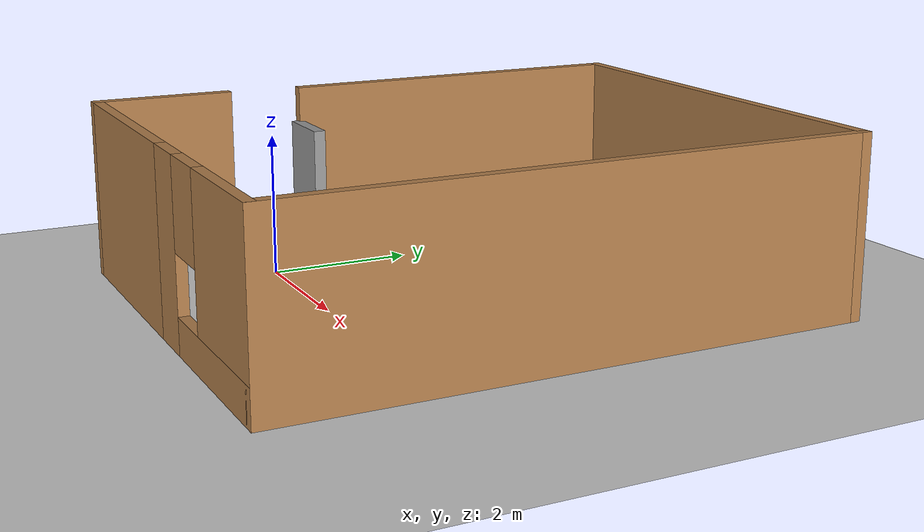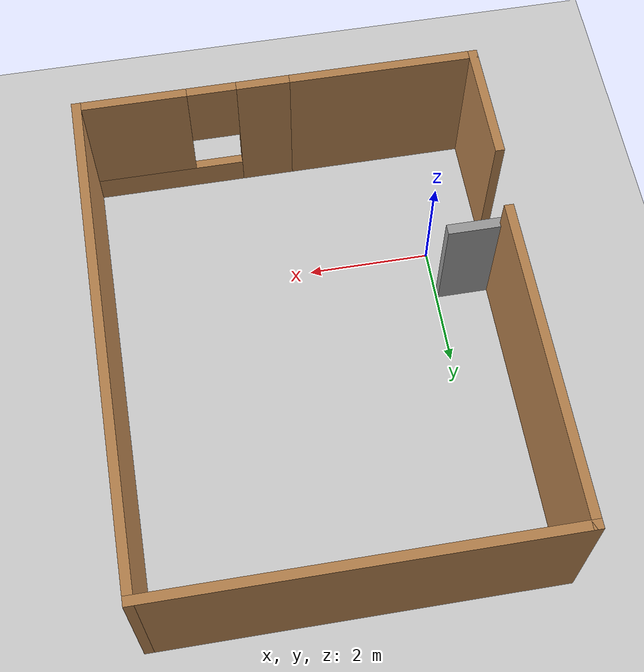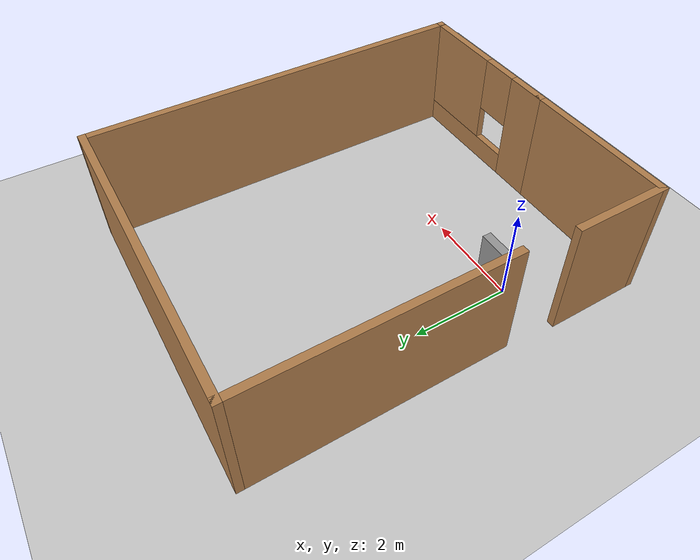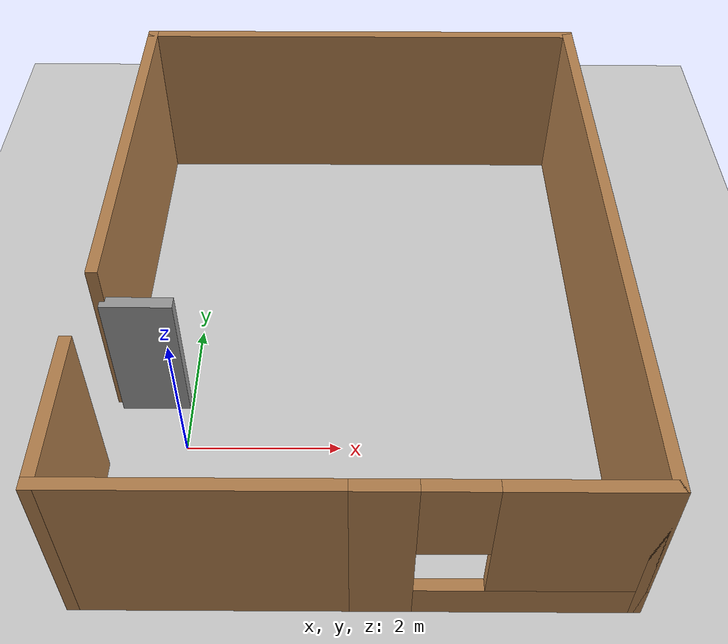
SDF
<sdf version="1.7">
 <world name="default">
  <light name="sun" type="directional">
   <pose>0 0 10 0 -0 0</pose>
   <diffuse>0.8 0.8 0.8 1</diffuse>
   <specular>0.2 0.2 0.2 1</specular>
   <attenuation>
    <range>1000</range>
    <constant>0.9</constant>
    <linear>0.01</linear>
    <quadratic>0.001</quadratic>
   </attenuation>
   <direction>-0.5 0.1 -0.9</direction>
   <spot><inner_angle>0</inner_angle><outer_angle>0</outer_angle><falloff>0</falloff></spot>
  </light>
  <model name="ground_plane">
   <static>1</static>
   <link name="link">
    <collision name="collision">
     <geometry><plane><normal>0 0 1</normal><size>100 100</size></plane></geometry>
     <surface>
      <contact><collide_bitmask>65535</collide_bitmask></contact>
      <friction><ode><mu>100</mu><mu2>50</mu2></ode></friction>
     </surface>
    </collision>
    <visual name="visual">
     <cast_shadows>0</cast_shadows>
     <geometry><plane><normal>0 0 1</normal><size>100 100</size></plane></geometry>
     <material>
      <script><uri>file://media/materials/scripts/gazebo.material</uri><name>Gazebo/Grey</name></script>
     </material>
    </visual>
   </link>
  </model>
  <gravity>0 0 -9.8</gravity>
  <magnetic_field>6e-06 2.3e-05 -4.2e-05</magnetic_field>
  <atmosphere type="adiabatic"/>
  <physics type="ode">
   <max_step_size>0.001</max_step_size>
   <real_time_factor>1</real_time_factor>
   <real_time_update_rate>1000</real_time_update_rate>
  </physics>
  <scene><ambient>0.4 0.4 0.4 1</ambient><background>0.7 0.7 0.7 1</background><shadows>1</shadows></scene>
  <spherical_coordinates>
   <surface_model>EARTH_WGS84</surface_model>
   <latitude_deg>0</latitude_deg>
   <longitude_deg>0</longitude_deg>
   <elevation>0</elevation>
   <heading_deg>0</heading_deg>
  </spherical_coordinates>
  <model name="Hospital_room">
   <pose>2.17999 1.86895 0 0 -0 0</pose>
   <link name="Door_0">
    <collision name="Door_0_Collision">
     <geometry><box><size>0.9 0.17 2</size></box></geometry>
     <pose>0 0 1 0 -0 0</pose>
    </collision>
    <visual name="Door_0_Visual">
     <pose>0 0 1 0 -0 0</pose>
     <geometry><box><size>0.9 0.17 2</size></box></geometry>
     <material>
      <script><uri>file://media/materials/scripts/gazebo.material</uri><name>Gazebo/Grey</name></script>
     </material>
    </visual>
    <pose>-2.66668 -1.13911 0 0 -0 0</pose>
   </link>
   <link name="Wall_10">
    <collision name="Wall_10_Collision">
     <geometry><box><size>6.5 0.15 2.5</size></box></geometry>
     <pose>0 0 1.25 0 -0 0</pose>
    </collision>
    <visual name="Wall_10_Visual">
     <pose>0 0 1.25 0 -0 0</pose>
     <geometry><box><size>6.5 0.15 2.5</size></box></geometry>
     <material>
      <script><uri>file://media/materials/scripts/gazebo.material</uri><name>Gazebo/Wood</name></script>
      <ambient>1 1 1 1</ambient>
     </material>
     <meta><layer>0</layer></meta>
    </visual>
    <pose>0.05 4.05 0 0 -0 3.14159</pose>
   </link>
   <link name="Wall_11">
    <collision name="Wall_11_Collision">
     <geometry><box><size>5.25 0.15 2.5</size></box></geometry>
     <pose>0 0 1.25 0 -0 0</pose>
    </collision>
    <visual name="Wall_11_Visual">
     <pose>0 0 1.25 0 -0 0</pose>
     <geometry><box><size>5.25 0.15 2.5</size></box></geometry>
     <material>
      <script><uri>file://media/materials/scripts/gazebo.material</uri><name>Gazebo/Wood</name></script>
      <ambient>1 1 1 1</ambient>
     </material>
     <meta><layer>0</layer></meta>
    </visual>
    <pose>-3.125 1.5 0 0 -0 -1.5708</pose>
   </link>
   <link name="Wall_13">
    <collision name="Wall_13_Collision">
     <geometry><box><size>2 0.15 2.5</size></box></geometry>
     <pose>0 0 1.25 0 -0 0</pose>
    </collision>
    <visual name="Wall_13_Visual">
     <pose>0 0 1.25 0 -0 0</pose>
     <geometry><box><size>2 0.15 2.5</size></box></geometry>
     <material>
      <script><uri>file://media/materials/scripts/gazebo.material</uri><name>Gazebo/Wood</name></script>
      <ambient>1 1 1 1</ambient>
     </material>
     <meta><layer>0</layer></meta>
    </visual>
    <pose>-3.225 -3.125 0 0 -0 1.5708</pose>
   </link>
   <link name="Wall_6">
    <collision name="Wall_6_Collision">
     <geometry><box><size>3.25 0.15 2.5</size></box></geometry>
     <pose>0 0 1.25 0 -0 0</pose>
    </collision>
    <visual name="Wall_6_Visual">
     <pose>0 0 1.25 0 -0 0</pose>
     <geometry><box><size>3.25 0.15 2.5</size></box></geometry>
     <material>
      <script><uri>file://media/materials/scripts/gazebo.material</uri><name>Gazebo/Wood</name></script>
      <ambient>1 1 1 1</ambient>
     </material>
     <meta><layer>0</layer></meta>
    </visual>
    <pose>-1.675 -4.05 0 0 -0 3.14159</pose>
   </link>
   <link name="Wall_8">
    <pose>1.55 -4.05 0 0 -0 0</pose>
    <visual name="Wall_8_Visual_0">
     <pose>-1.31734 0 1.25 0 -0 0</pose>
     <geometry><box><size>0.865327 0.15 2.5</size></box></geometry>
     <material>
      <script><uri>file://media/materials/scripts/gazebo.material</uri><name>Gazebo/Wood</name></script>
      <ambient>1 1 1 1</ambient>
     </material>
     <meta><layer>0</layer></meta>
    </visual>
    <collision name="Wall_8_Collision_0">
     <geometry><box><size>0.865327 0.15 2.5</size></box></geometry>
     <pose>-1.31734 0 1.25 0 -0 0</pose>
    </collision>
    <visual name="Wall_8_Visual_1">
     <pose>0.432664 0 0.25 0 -0 0</pose>
     <geometry><box><size>2.63467 0.15 0.5</size></box></geometry>
     <material>
      <script><uri>file://media/materials/scripts/gazebo.material</uri><name>Gazebo/Wood</name></script>
      <ambient>1 1 1 1</ambient>
     </material>
     <meta><layer>0</layer></meta>
    </visual>
    <collision name="Wall_8_Collision_1">
     <geometry><box><size>2.63467 0.15 0.5</size></box></geometry>
     <pose>0.432664 0 0.25 0 -0 0</pose>
    </collision>
    <visual name="Wall_8_Visual_2">
     <pose>0.832664 0 1.5 0 -0 0</pose>
     <geometry><box><size>1.83467 0.15 2</size></box></geometry>
     <material>
      <script><uri>file://media/materials/scripts/gazebo.material</uri><name>Gazebo/Wood</name></script>
      <ambient>1 1 1 1</ambient>
     </material>
     <meta><layer>0</layer></meta>
    </visual>
    <collision name="Wall_8_Collision_2">
     <geometry><box><size>1.83467 0.15 2</size></box></geometry>
     <pose>0.832664 0 1.5 0 -0 0</pose>
    </collision>
    <visual name="Wall_8_Visual_3">
     <pose>-0.484673 0 1.9 0 -0 0</pose>
     <geometry><box><size>0.8 0.15 1.2</size></box></geometry>
     <material>
      <script><uri>file://media/materials/scripts/gazebo.material</uri><name>Gazebo/Wood</name></script>
      <ambient>1 1 1 1</ambient>
     </material>
     <meta><layer>0</layer></meta>
    </visual>
    <collision name="Wall_8_Collision_3">
     <geometry><box><size>0.8 0.15 1.2</size></box></geometry>
     <pose>-0.484673 0 1.9 0 -0 0</pose>
    </collision>
   </link>
   <link name="Wall_9">
    <collision name="Wall_9_Collision">
     <geometry><box><size>8.25 0.15 2.5</size></box></geometry>
     <pose>0 0 1.25 0 -0 0</pose>
    </collision>
    <visual name="Wall_9_Visual">
     <pose>0 0 1.25 0 -0 0</pose>
     <geometry><box><size>8.25 0.15 2.5</size></box></geometry>
     <material>
      <script><uri>file://media/materials/scripts/gazebo.material</uri><name>Gazebo/Wood</name></script>
      <ambient>1 1 1 1</ambient>
     </material>
     <meta><layer>0</layer></meta>
    </visual>
    <pose>3.225 0 0 0 -0 1.5708</pose>
   </link>
   <static>1</static>
  </model>
 </world>
</sdf>
